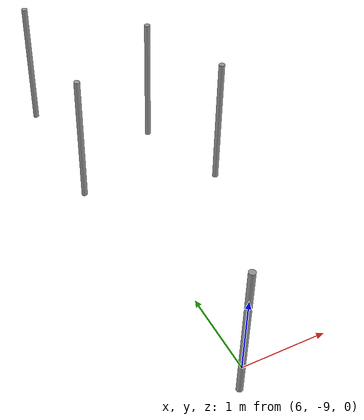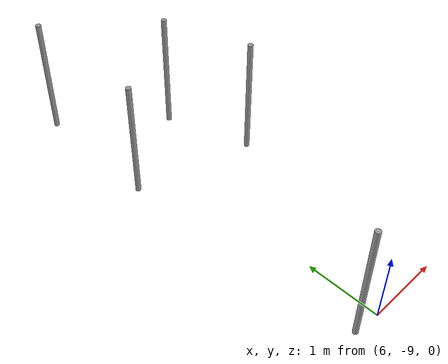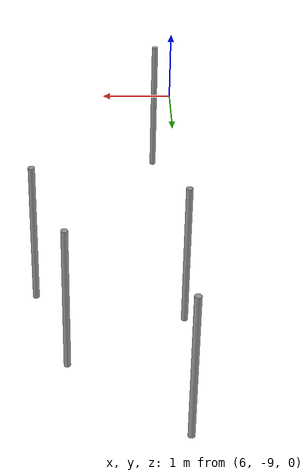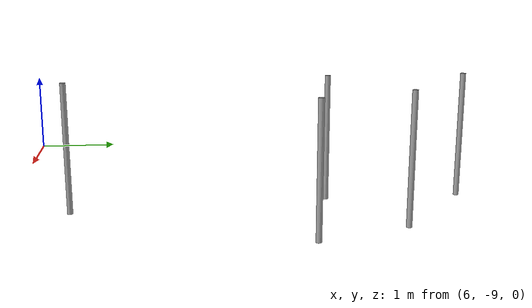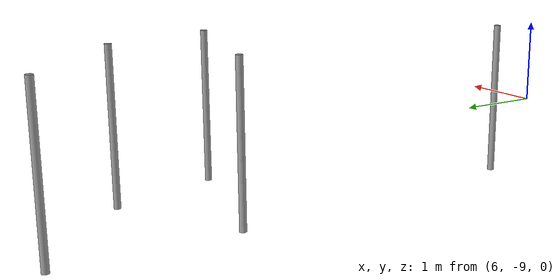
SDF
<sdf version="1.7">
 <model name="Complex1">
  <link name="link_0_clone_clone_28">
   <inertial>
    <mass>0.0136479</mass>
    <inertia>
     <ixx>0.00424334</ixx>
     <ixy>0</ixy>
     <ixz>0</ixz>
     <iyy>0.00424334</iyy>
     <iyz>0</iyz>
     <izz>1.17941e-05</izz>
    </inertia>
   </inertial>
   <pose>6.25005 -8.65276 0 0 -0 0</pose>
   <visual name="visual">
    <geometry><cylinder><radius>0.0415732</radius><length>1.93023</length></cylinder></geometry>
    <material>
     <lighting>1</lighting>
     <script><uri>file://media/materials/scripts/gazebo.material</uri><name>Gazebo/Grey</name></script>
     <shader type="pixel"/>
    </material>
   </visual>
   <collision name="collision">
    <geometry><cylinder><radius>0.041573</radius><length>1.93023</length></cylinder></geometry>
    <surface>
     <friction>
      <ode><mu>1</mu><mu2>1</mu2><fdir1>0 0 0</fdir1><slip1>0</slip1><slip2>0</slip2></ode>
      <torsional>
       <coefficient>1</coefficient>
       <patch_radius>0</patch_radius>
       <surface_radius>0</surface_radius>
       <use_patch_radius>1</use_patch_radius>
       <ode><slip>0</slip></ode>
      </torsional>
     </friction>
     <bounce><restitution_coefficient>0</restitution_coefficient><threshold>1e+06</threshold></bounce>
     <contact>
      <collide_without_contact>0</collide_without_contact>
      <collide_without_contact_bitmask>1</collide_without_contact_bitmask>
      <collide_bitmask>1</collide_bitmask>
      <ode>
       <soft_cfm>0</soft_cfm>
       <soft_erp>0.2</soft_erp>
       <kp>1e+13</kp>
       <kd>1</kd>
       <max_vel>0.01</max_vel>
       <min_depth>0</min_depth>
      </ode>
      <bullet>
       <split_impulse>1</split_impulse>
       <split_impulse_penetration_threshold>-0.01</split_impulse_penetration_threshold>
       <soft_cfm>0</soft_cfm>
       <soft_erp>0.2</soft_erp>
       <kp>1e+13</kp>
       <kd>1</kd>
      </bullet>
     </contact>
    </surface>
   </collision>
  </link>
  <link name="link_0_clone_clone_29">
   <inertial>
    <mass>0.0136479</mass>
    <inertia>
     <ixx>0.00424334</ixx>
     <ixy>0</ixy>
     <ixz>0</ixz>
     <iyy>0.00424334</iyy>
     <iyz>0</iyz>
     <izz>1.17941e-05</izz>
    </inertia>
   </inertial>
   <pose>7.85196 -5.2685 0 0 -0 0</pose>
   <visual name="visual">
    <geometry><cylinder><radius>0.0415732</radius><length>1.93023</length></cylinder></geometry>
    <material>
     <lighting>1</lighting>
     <script><uri>file://media/materials/scripts/gazebo.material</uri><name>Gazebo/Grey</name></script>
     <shader type="pixel"/>
    </material>
   </visual>
   <collision name="collision">
    <geometry><cylinder><radius>0.041573</radius><length>1.93023</length></cylinder></geometry>
    <surface>
     <friction>
      <ode><mu>1</mu><mu2>1</mu2><fdir1>0 0 0</fdir1><slip1>0</slip1><slip2>0</slip2></ode>
      <torsional>
       <coefficient>1</coefficient>
       <patch_radius>0</patch_radius>
       <surface_radius>0</surface_radius>
       <use_patch_radius>1</use_patch_radius>
       <ode><slip>0</slip></ode>
      </torsional>
     </friction>
     <bounce><restitution_coefficient>0</restitution_coefficient><threshold>1e+06</threshold></bounce>
     <contact>
      <collide_without_contact>0</collide_without_contact>
      <collide_without_contact_bitmask>1</collide_without_contact_bitmask>
      <collide_bitmask>1</collide_bitmask>
      <ode>
       <soft_cfm>0</soft_cfm>
       <soft_erp>0.2</soft_erp>
       <kp>1e+13</kp>
       <kd>1</kd>
       <max_vel>0.01</max_vel>
       <min_depth>0</min_depth>
      </ode>
      <bullet>
       <split_impulse>1</split_impulse>
       <split_impulse_penetration_threshold>-0.01</split_impulse_penetration_threshold>
       <soft_cfm>0</soft_cfm>
       <soft_erp>0.2</soft_erp>
       <kp>1e+13</kp>
       <kd>1</kd>
      </bullet>
     </contact>
    </surface>
   </collision>
  </link>
  <link name="link_0_clone_clone_30">
   <inertial>
    <mass>0.0136479</mass>
    <inertia>
     <ixx>0.00424334</ixx>
     <ixy>0</ixy>
     <ixz>0</ixz>
     <iyy>0.00424334</iyy>
     <iyz>0</iyz>
     <izz>1.17941e-05</izz>
    </inertia>
   </inertial>
   <pose>7.41362 -3.90525 0 0 -0 0</pose>
   <visual name="visual">
    <geometry><cylinder><radius>0.0415732</radius><length>1.93023</length></cylinder></geometry>
    <material>
     <lighting>1</lighting>
     <script><uri>file://media/materials/scripts/gazebo.material</uri><name>Gazebo/Grey</name></script>
     <shader type="pixel"/>
    </material>
   </visual>
   <collision name="collision">
    <geometry><cylinder><radius>0.041573</radius><length>1.93023</length></cylinder></geometry>
    <surface>
     <friction>
      <ode><mu>1</mu><mu2>1</mu2><fdir1>0 0 0</fdir1><slip1>0</slip1><slip2>0</slip2></ode>
      <torsional>
       <coefficient>1</coefficient>
       <patch_radius>0</patch_radius>
       <surface_radius>0</surface_radius>
       <use_patch_radius>1</use_patch_radius>
       <ode><slip>0</slip></ode>
      </torsional>
     </friction>
     <bounce><restitution_coefficient>0</restitution_coefficient><threshold>1e+06</threshold></bounce>
     <contact>
      <collide_without_contact>0</collide_without_contact>
      <collide_without_contact_bitmask>1</collide_without_contact_bitmask>
      <collide_bitmask>1</collide_bitmask>
      <ode>
       <soft_cfm>0</soft_cfm>
       <soft_erp>0.2</soft_erp>
       <kp>1e+13</kp>
       <kd>1</kd>
       <max_vel>0.01</max_vel>
       <min_depth>0</min_depth>
      </ode>
      <bullet>
       <split_impulse>1</split_impulse>
       <split_impulse_penetration_threshold>-0.01</split_impulse_penetration_threshold>
       <soft_cfm>0</soft_cfm>
       <soft_erp>0.2</soft_erp>
       <kp>1e+13</kp>
       <kd>1</kd>
      </bullet>
     </contact>
    </surface>
   </collision>
  </link>
  <link name="link_0_clone_clone_8">
   <inertial>
    <mass>0.0136479</mass>
    <inertia>
     <ixx>0.00424334</ixx>
     <ixy>0</ixy>
     <ixz>0</ixz>
     <iyy>0.00424334</iyy>
     <iyz>0</iyz>
     <izz>1.17941e-05</izz>
    </inertia>
   </inertial>
   <pose>5.96948 -4.79447 0 0 -0 0</pose>
   <visual name="visual">
    <geometry><cylinder><radius>0.0415732</radius><length>1.93023</length></cylinder></geometry>
    <material>
     <lighting>1</lighting>
     <script><uri>file://media/materials/scripts/gazebo.material</uri><name>Gazebo/Grey</name></script>
     <shader type="pixel"/>
    </material>
   </visual>
   <collision name="collision">
    <geometry><cylinder><radius>0.041573</radius><length>1.93023</length></cylinder></geometry>
    <surface>
     <friction>
      <ode><mu>1</mu><mu2>1</mu2><fdir1>0 0 0</fdir1><slip1>0</slip1><slip2>0</slip2></ode>
      <torsional>
       <coefficient>1</coefficient>
       <patch_radius>0</patch_radius>
       <surface_radius>0</surface_radius>
       <use_patch_radius>1</use_patch_radius>
       <ode><slip>0</slip></ode>
      </torsional>
     </friction>
     <bounce><restitution_coefficient>0</restitution_coefficient><threshold>1e+06</threshold></bounce>
     <contact>
      <collide_without_contact>0</collide_without_contact>
      <collide_without_contact_bitmask>1</collide_without_contact_bitmask>
      <collide_bitmask>1</collide_bitmask>
      <ode>
       <soft_cfm>0</soft_cfm>
       <soft_erp>0.2</soft_erp>
       <kp>1e+13</kp>
       <kd>1</kd>
       <max_vel>0.01</max_vel>
       <min_depth>0</min_depth>
      </ode>
      <bullet>
       <split_impulse>1</split_impulse>
       <split_impulse_penetration_threshold>-0.01</split_impulse_penetration_threshold>
       <soft_cfm>0</soft_cfm>
       <soft_erp>0.2</soft_erp>
       <kp>1e+13</kp>
       <kd>1</kd>
      </bullet>
     </contact>
    </surface>
   </collision>
  </link>
  <link name="link_0_clone_clone_9">
   <inertial>
    <mass>0.0136479</mass>
    <inertia>
     <ixx>0.00424334</ixx>
     <ixy>0</ixy>
     <ixz>0</ixz>
     <iyy>0.00424334</iyy>
     <iyz>0</iyz>
     <izz>1.17941e-05</izz>
    </inertia>
   </inertial>
   <pose>6.00311 -2.69846 0 0 -0 0</pose>
   <visual name="visual">
    <geometry><cylinder><radius>0.0415732</radius><length>1.93023</length></cylinder></geometry>
    <material>
     <lighting>1</lighting>
     <script><uri>file://media/materials/scripts/gazebo.material</uri><name>Gazebo/Grey</name></script>
     <shader type="pixel"/>
    </material>
   </visual>
   <collision name="collision">
    <geometry><cylinder><radius>0.041573</radius><length>1.93023</length></cylinder></geometry>
    <surface>
     <friction>
      <ode><mu>1</mu><mu2>1</mu2><fdir1>0 0 0</fdir1><slip1>0</slip1><slip2>0</slip2></ode>
      <torsional>
       <coefficient>1</coefficient>
       <patch_radius>0</patch_radius>
       <surface_radius>0</surface_radius>
       <use_patch_radius>1</use_patch_radius>
       <ode><slip>0</slip></ode>
      </torsional>
     </friction>
     <bounce><restitution_coefficient>0</restitution_coefficient><threshold>1e+06</threshold></bounce>
     <contact>
      <collide_without_contact>0</collide_without_contact>
      <collide_without_contact_bitmask>1</collide_without_contact_bitmask>
      <collide_bitmask>1</collide_bitmask>
      <ode>
       <soft_cfm>0</soft_cfm>
       <soft_erp>0.2</soft_erp>
       <kp>1e+13</kp>
       <kd>1</kd>
       <max_vel>0.01</max_vel>
       <min_depth>0</min_depth>
      </ode>
      <bullet>
       <split_impulse>1</split_impulse>
       <split_impulse_penetration_threshold>-0.01</split_impulse_penetration_threshold>
       <soft_cfm>0</soft_cfm>
       <soft_erp>0.2</soft_erp>
       <kp>1e+13</kp>
       <kd>1</kd>
      </bullet>
     </contact>
    </surface>
   </collision>
  </link>
  <static>true</static>
 </model>
</sdf>
